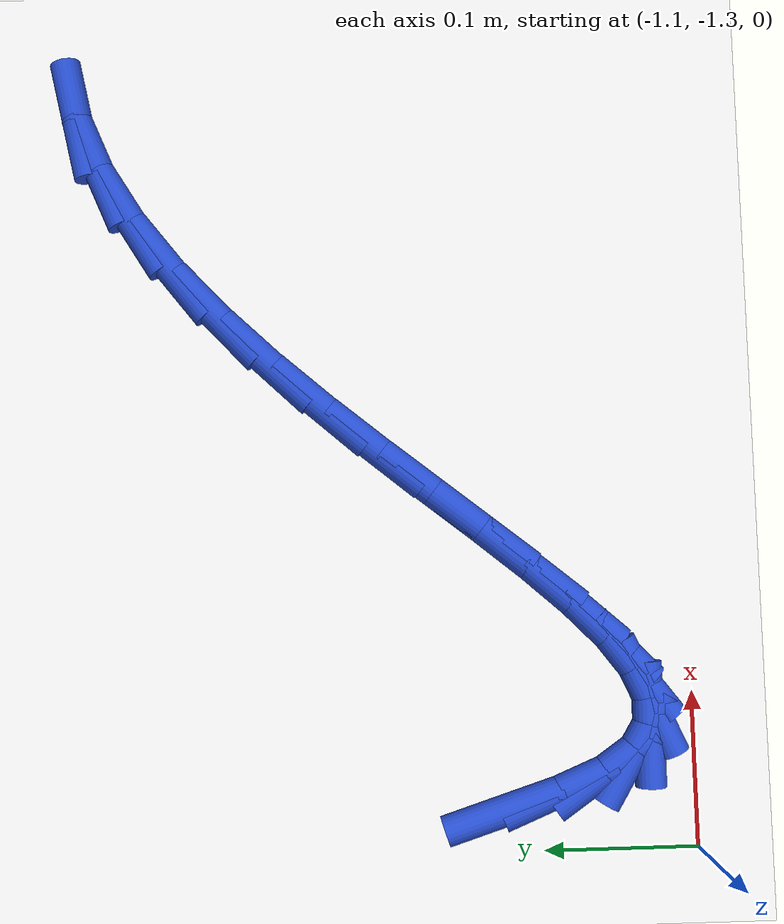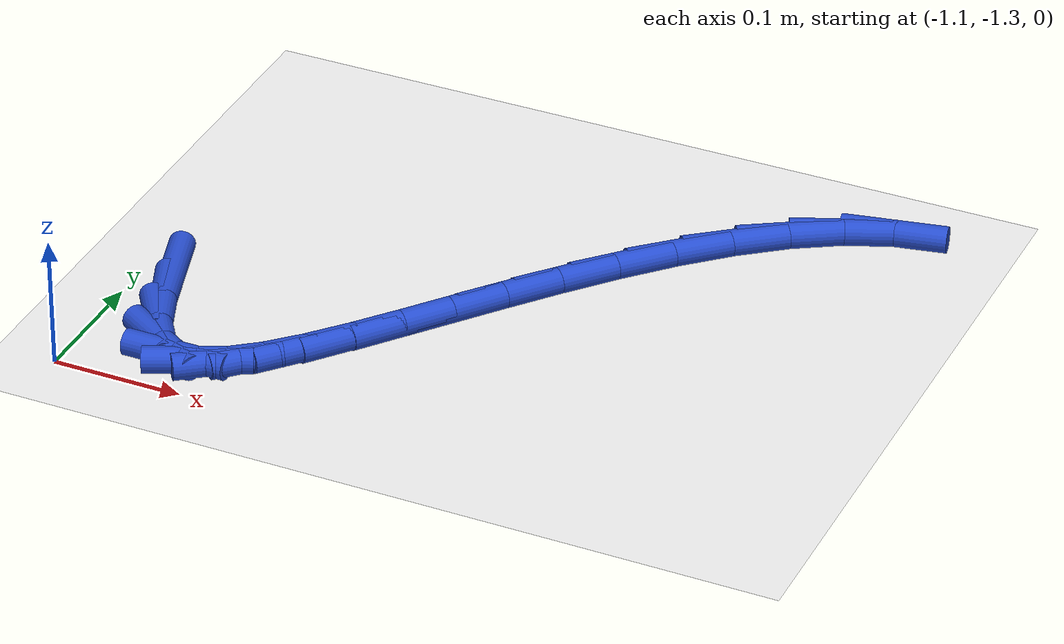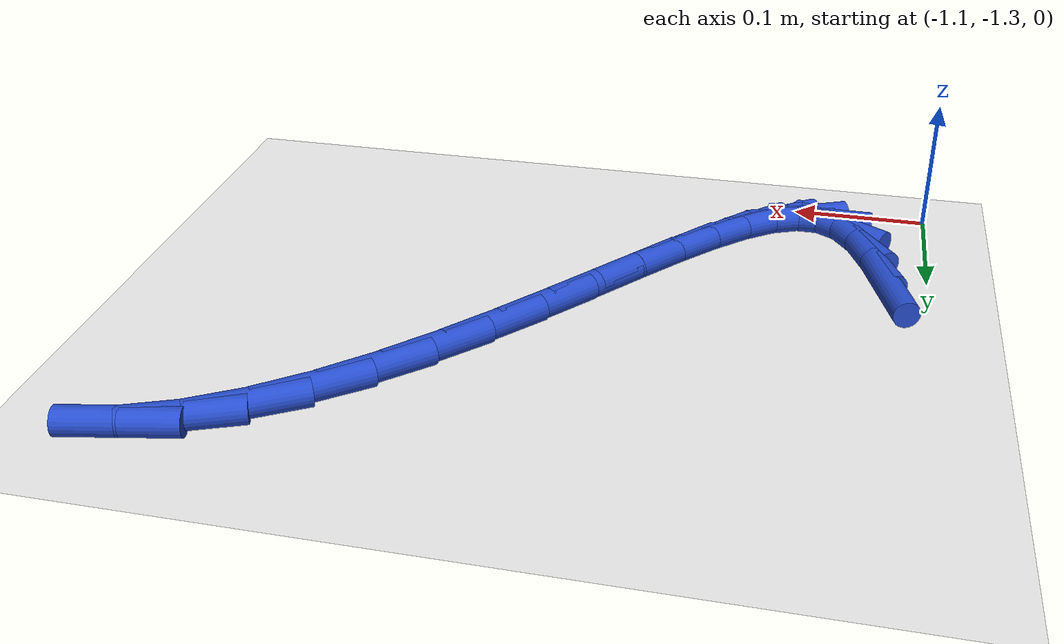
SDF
<sdf version="1.6">
 <world name="default">
  <model name="ground_plane">
   <static>1</static>
   <link name="link">
    <collision name="collision">
     <geometry><plane><normal>0 0 1</normal><size>100 100</size></plane></geometry>
     <surface><friction><ode><mu>100</mu><mu2>50</mu2></ode></friction></surface>
    </collision>
    <visual name="visual">
     <cast_shadows>0</cast_shadows>
     <geometry><plane><normal>0 0 1</normal><size>100 100</size></plane></geometry>
     <material>
      <script><uri>file://media/materials/scripts/gazebo.material</uri><name>Gazebo/WhiteGlow</name></script>
     </material>
    </visual>
   </link>
  </model>
  <model name="line">
   <link name="link_182">
    <pose>-1.0714778896792492 -1.1739915269945367 0.01 0 1.57 -1.2645373727629226</pose>
    <collision name="collision">
     <geometry><cylinder><radius>0.01</radius><length>0.08</length></cylinder></geometry>
    </collision>
    <visual name="visual">
     <material>
      <script><name>Gazebo/Blue</name><uri>file://media/materials/scripts/gazebo.material</uri></script>
     </material>
     <geometry><cylinder><radius>0.01</radius><length>0.08</length></cylinder></geometry>
    </visual>
   </link>
   <link name="link_183">
    <pose>-1.0602233599218462 -1.209583754945708 0.01 0 1.57 -1.1809788353083737</pose>
    <collision name="collision">
     <geometry><cylinder><radius>0.01</radius><length>0.08</length></cylinder></geometry>
    </collision>
    <visual name="visual">
     <material>
      <script><name>Gazebo/Blue</name><uri>file://media/materials/scripts/gazebo.material</uri></script>
     </material>
     <geometry><cylinder><radius>0.01</radius><length>0.08</length></cylinder></geometry>
    </visual>
   </link>
   <link name="link_184">
    <pose>-1.0480547245175862 -1.2392025565764755 0.01 0 1.57 -0.9676210675007645</pose>
    <collision name="collision">
     <geometry><cylinder><radius>0.01</radius><length>0.08</length></cylinder></geometry>
    </collision>
    <visual name="visual">
     <material>
      <script><name>Gazebo/Blue</name><uri>file://media/materials/scripts/gazebo.material</uri></script>
     </material>
     <geometry><cylinder><radius>0.01</radius><length>0.08</length></cylinder></geometry>
    </visual>
   </link>
   <link name="link_185">
    <pose>-1.0343060039956493 -1.259162709100041 0.01 0 1.57 -0.544211171421089</pose>
    <collision name="collision">
     <geometry><cylinder><radius>0.01</radius><length>0.08</length></cylinder></geometry>
    </collision>
    <visual name="visual">
     <material>
      <script><name>Gazebo/Blue</name><uri>file://media/materials/scripts/gazebo.material</uri></script>
     </material>
     <geometry><cylinder><radius>0.01</radius><length>0.08</length></cylinder></geometry>
    </visual>
   </link>
   <link name="link_186">
    <pose>-1.018738972322909 -1.2685833856185753 0.01 0 1.57 0.0019633523310117864</pose>
    <collision name="collision">
     <geometry><cylinder><radius>0.01</radius><length>0.08</length></cylinder></geometry>
    </collision>
    <visual name="visual">
     <material>
      <script><name>Gazebo/Blue</name><uri>file://media/materials/scripts/gazebo.material</uri></script>
     </material>
     <geometry><cylinder><radius>0.01</radius><length>0.08</length></cylinder></geometry>
    </visual>
   </link>
   <link name="link_187">
    <pose>-1.001415217776887 -1.268549372941002 0.01 0 1.57 0.4144085088690461</pose>
    <collision name="collision">
     <geometry><cylinder><radius>0.01</radius><length>0.08</length></cylinder></geometry>
    </collision>
    <visual name="visual">
     <material>
      <script><name>Gazebo/Blue</name><uri>file://media/materials/scripts/gazebo.material</uri></script>
     </material>
     <geometry><cylinder><radius>0.01</radius><length>0.08</length></cylinder></geometry>
    </visual>
   </link>
   <link name="link_188">
    <pose>-0.982402514928895 -1.2601860158597629 0.01 0 1.57 0.6463469996807155</pose>
    <collision name="collision">
     <geometry><cylinder><radius>0.01</radius><length>0.08</length></cylinder></geometry>
    </collision>
    <visual name="visual">
     <material>
      <script><name>Gazebo/Blue</name><uri>file://media/materials/scripts/gazebo.material</uri></script>
     </material>
     <geometry><cylinder><radius>0.01</radius><length>0.08</length></cylinder></geometry>
    </visual>
   </link>
   <link name="link_189">
    <pose>-0.9617686383502462 -1.244618659167299 0.01 0 1.57 0.7730505446647632</pose>
    <collision name="collision">
     <geometry><cylinder><radius>0.01</radius><length>0.08</length></cylinder></geometry>
    </collision>
    <visual name="visual">
     <material>
      <script><name>Gazebo/Blue</name><uri>file://media/materials/scripts/gazebo.material</uri></script>
     </material>
     <geometry><cylinder><radius>0.01</radius><length>0.08</length></cylinder></geometry>
    </visual>
   </link>
   <link name="link_190">
    <pose>-0.939581362612253 -1.2229726476560527 0.01 0 1.57 0.8435440407516744</pose>
    <collision name="collision">
     <geometry><cylinder><radius>0.01</radius><length>0.08</length></cylinder></geometry>
    </collision>
    <visual name="visual">
     <material>
      <script><name>Gazebo/Blue</name><uri>file://media/materials/scripts/gazebo.material</uri></script>
     </material>
     <geometry><cylinder><radius>0.01</radius><length>0.08</length></cylinder></geometry>
    </visual>
   </link>
   <link name="link_191">
    <pose>-0.9159084622862277 -1.196373326118465 0.01 0 1.57 0.8812263211342611</pose>
    <collision name="collision">
     <geometry><cylinder><radius>0.01</radius><length>0.08</length></cylinder></geometry>
    </collision>
    <visual name="visual">
     <material>
      <script><name>Gazebo/Blue</name><uri>file://media/materials/scripts/gazebo.material</uri></script>
     </material>
     <geometry><cylinder><radius>0.01</radius><length>0.08</length></cylinder></geometry>
    </visual>
   </link>
   <link name="link_192">
    <pose>-0.8908177119434826 -1.1659460393469772 0.01 0 1.57 0.8972178195166653</pose>
    <collision name="collision">
     <geometry><cylinder><radius>0.01</radius><length>0.08</length></cylinder></geometry>
    </collision>
    <visual name="visual">
     <material>
      <script><name>Gazebo/Blue</name><uri>file://media/materials/scripts/gazebo.material</uri></script>
     </material>
     <geometry><cylinder><radius>0.01</radius><length>0.08</length></cylinder></geometry>
    </visual>
   </link>
   <link name="link_193">
    <pose>-0.864376886155331 -1.1328161321340322 0.01 0 1.57 0.8968045997729273</pose>
    <collision name="collision">
     <geometry><cylinder><radius>0.01</radius><length>0.08</length></cylinder></geometry>
    </collision>
    <visual name="visual">
     <material>
      <script><name>Gazebo/Blue</name><uri>file://media/materials/scripts/gazebo.material</uri></script>
     </material>
     <geometry><cylinder><radius>0.01</radius><length>0.08</length></cylinder></geometry>
    </visual>
   </link>
   <link name="link_194">
    <pose>-0.8366537594930858 -1.0981089492720715 0.01 0 1.57 0.8821586183277266</pose>
    <collision name="collision">
     <geometry><cylinder><radius>0.01</radius><length>0.08</length></cylinder></geometry>
    </collision>
    <visual name="visual">
     <material>
      <script><name>Gazebo/Blue</name><uri>file://media/materials/scripts/gazebo.material</uri></script>
     </material>
     <geometry><cylinder><radius>0.01</radius><length>0.08</length></cylinder></geometry>
    </visual>
   </link>
   <link name="link_195">
    <pose>-0.8077161065280589 -1.0629498355535363 0.01 0 1.57 0.8534559376134327</pose>
    <collision name="collision">
     <geometry><cylinder><radius>0.01</radius><length>0.08</length></cylinder></geometry>
    </collision>
    <visual name="visual">
     <material>
      <script><name>Gazebo/Blue</name><uri>file://media/materials/scripts/gazebo.material</uri></script>
     </material>
     <geometry><cylinder><radius>0.01</radius><length>0.08</length></cylinder></geometry>
    </visual>
   </link>
   <link name="link_196">
    <pose>-0.7776317018315626 -1.0284641357708681 0.01 0 1.57 0.8092550535759887</pose>
    <collision name="collision">
     <geometry><cylinder><radius>0.01</radius><length>0.08</length></cylinder></geometry>
    </collision>
    <visual name="visual">
     <material>
      <script><name>Gazebo/Blue</name><uri>file://media/materials/scripts/gazebo.material</uri></script>
     </material>
     <geometry><cylinder><radius>0.01</radius><length>0.08</length></cylinder></geometry>
    </visual>
   </link>
   <link name="link_197">
    <pose>-0.7464683199749103 -0.995777194716509 0.01 0 1.57 0.7464793798315307</pose>
    <collision name="collision">
     <geometry><cylinder><radius>0.01</radius><length>0.08</length></cylinder></geometry>
    </collision>
    <visual name="visual">
     <material>
      <script><name>Gazebo/Blue</name><uri>file://media/materials/scripts/gazebo.material</uri></script>
     </material>
     <geometry><cylinder><radius>0.01</radius><length>0.08</length></cylinder></geometry>
    </visual>
   </link>
   <link name="link_198">
    <pose>-0.7142937355294141 -0.9660143571829006 0.01 0 1.57 0.6601947655283339</pose>
    <collision name="collision">
     <geometry><cylinder><radius>0.01</radius><length>0.08</length></cylinder></geometry>
    </collision>
    <visual name="visual">
     <material>
      <script><name>Gazebo/Blue</name><uri>file://media/materials/scripts/gazebo.material</uri></script>
     </material>
     <geometry><cylinder><radius>0.01</radius><length>0.08</length></cylinder></geometry>
    </visual>
   </link>
   <link name="link_199">
    <pose>-0.6811757230663863 -0.9403009679624842 0.01 0 1.57 0.5434938933224992</pose>
    <collision name="collision">
     <geometry><cylinder><radius>0.01</radius><length>0.08</length></cylinder></geometry>
    </collision>
    <visual name="visual">
     <material>
      <script><name>Gazebo/Blue</name><uri>file://media/materials/scripts/gazebo.material</uri></script>
     </material>
     <geometry><cylinder><radius>0.01</radius><length>0.08</length></cylinder></geometry>
    </visual>
   </link>
   <link name="link_200">
    <pose>-0.6471820571571392 -0.9197623718477013 0.01 0 1.57 0.38835471999196824</pose>
    <collision name="collision">
     <geometry><cylinder><radius>0.01</radius><length>0.08</length></cylinder></geometry>
    </collision>
    <visual name="visual">
     <material>
      <script><name>Gazebo/Blue</name><uri>file://media/materials/scripts/gazebo.material</uri></script>
     </material>
     <geometry><cylinder><radius>0.01</radius><length>0.08</length></cylinder></geometry>
    </visual>
   </link>
   <link name="link_201">
    <pose>-0.6123805123729865 -0.9055239136309943 0.01 0 1.57 0.19534635913208243</pose>
    <collision name="collision">
     <geometry><cylinder><radius>0.01</radius><length>0.08</length></cylinder></geometry>
    </collision>
    <visual name="visual">
     <material>
      <script><name>Gazebo/Blue</name><uri>file://media/materials/scripts/gazebo.material</uri></script>
     </material>
     <geometry><cylinder><radius>0.01</radius><length>0.08</length></cylinder></geometry>
    </visual>
   </link>
  </model>
 </world>
</sdf>
